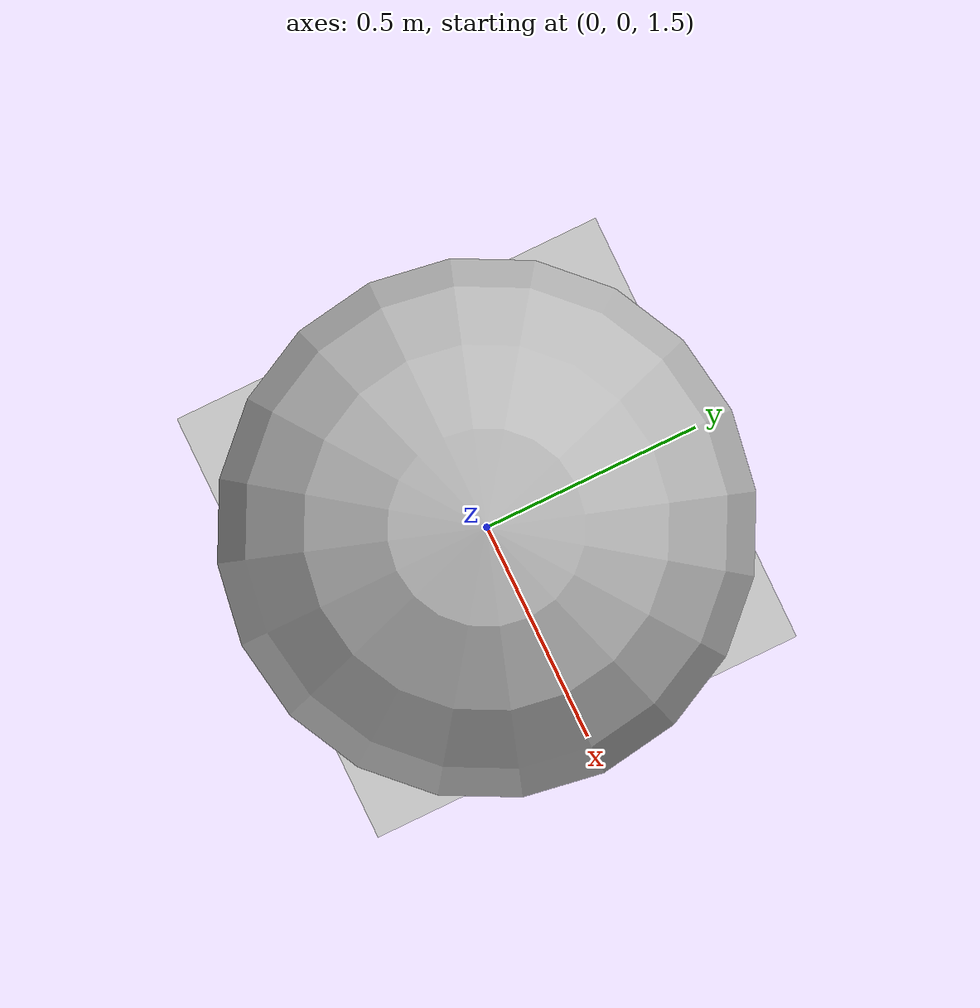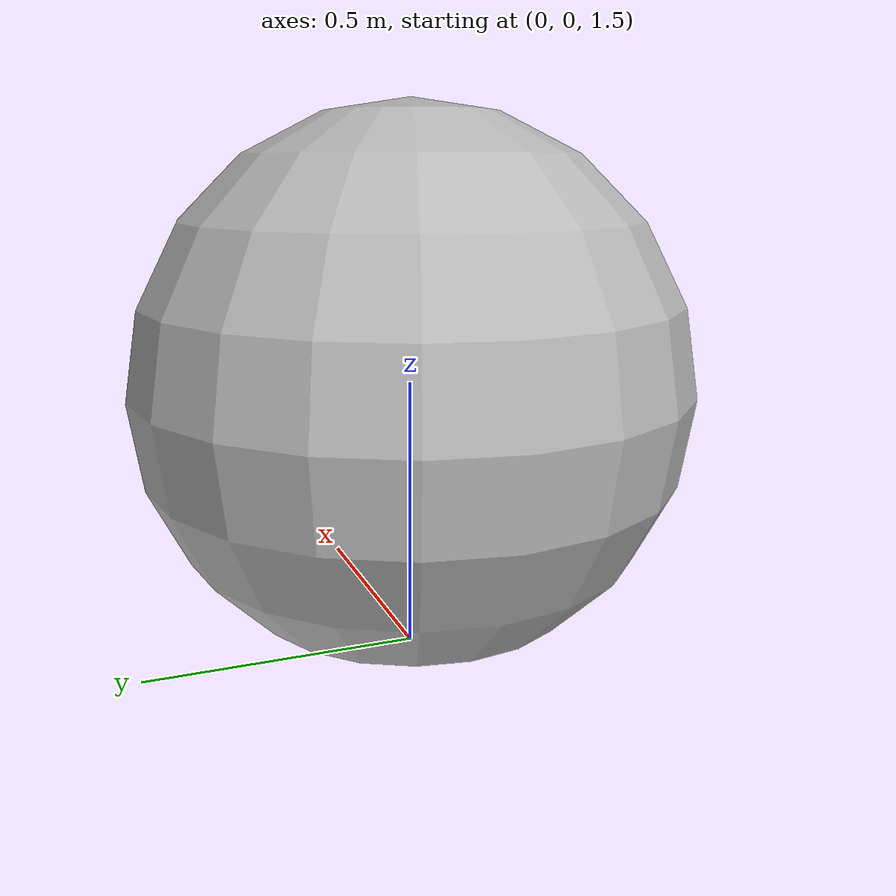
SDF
<?xml version="1.0"?>
<sdf version='1.6'>
  <world name='default'>
    <light name='sun' type='directional'>
      <cast_shadows>1</cast_shadows>
      <pose frame=''>0 0 10 0 -0 0</pose>
      <diffuse>0.8 0.8 0.8 1</diffuse>
      <specular>0.1 0.1 0.1 1</specular>
      <attenuation>
        <range>1000</range>
        <constant>0.9</constant>
        <linear>0.01</linear>
        <quadratic>0.001</quadratic>
      </attenuation>
      <direction>-0.5 0.5 -1</direction>
    </light>
    <model name='ground_plane'>
      <static>1</static>
      <link name='link'>
        <collision name='collision'>
          <geometry>
            <plane>
              <normal>0 0 1</normal>
              <size>100 100</size>
            </plane>
          </geometry>
          <surface>
            <friction>
              <ode>
                <mu>100</mu>
                <mu2>50</mu2>
              </ode>
              <torsional>
                <ode/>
              </torsional>
            </friction>
            <contact>
              <ode/>
            </contact>
            <bounce/>
          </surface>
          <max_contacts>10</max_contacts>
        </collision>
        <visual name='visual'>
          <cast_shadows>0</cast_shadows>
          <geometry>
            <plane>
              <normal>0 0 1</normal>
              <size>100 100</size>
            </plane>
          </geometry>
          <material>
            <script>
              <uri>file://media/materials/scripts/gazebo.material</uri>
              <name>Gazebo/Grey</name>
            </script>
          </material>
        </visual>
        <self_collide>0</self_collide>
        <enable_wind>0</enable_wind>
        <kinematic>0</kinematic>
      </link>
    </model>
    <model name='bouncy_ball'>
      <pose>0 0 2 0 0 0</pose>
      <link name='ball'>
        <collision name='ball_collision'>
          <!-- Setting to zero contacts crashes ode, does nothing in bullet -->
          <max_contacts>0</max_contacts>
          <geometry>
            <sphere>
              <radius>0.5</radius>
            </sphere>
          </geometry>
        </collision>
        <visual name='ball_visual'>
          <geometry>
            <sphere>
              <radius>0.5</radius>
            </sphere>
          </geometry>
        </visual>
      </link>
    </model>
    <gravity>0 0 -9.8</gravity>
    <magnetic_field>6e-06 2.3e-05 -4.2e-05</magnetic_field>
    <atmosphere type='adiabatic'/>
    <physics name='default_physics' default='0' type='ode'>
      <max_step_size>0.001</max_step_size>
      <real_time_factor>1</real_time_factor>
      <real_time_update_rate>1000</real_time_update_rate>
    </physics>
    <scene>
      <ambient>0.4 0.4 0.4 1</ambient>
      <background>0.7 0.7 0.7 1</background>
      <shadows>1</shadows>
    </scene>
    <wind/>
    <spherical_coordinates>
      <surface_model>EARTH_WGS84</surface_model>
      <latitude_deg>0</latitude_deg>
      <longitude_deg>0</longitude_deg>
      <elevation>0</elevation>
      <heading_deg>0</heading_deg>
    </spherical_coordinates>
  </world>
</sdf>
